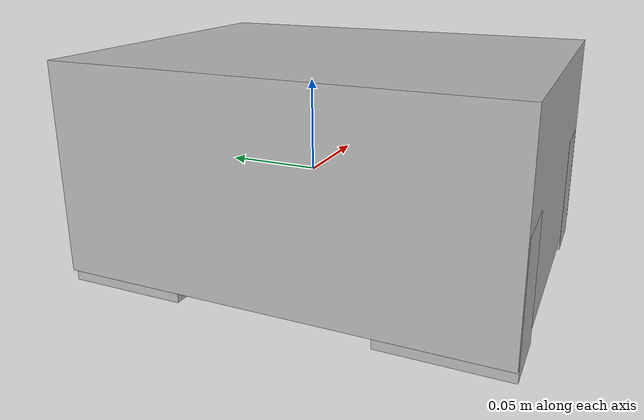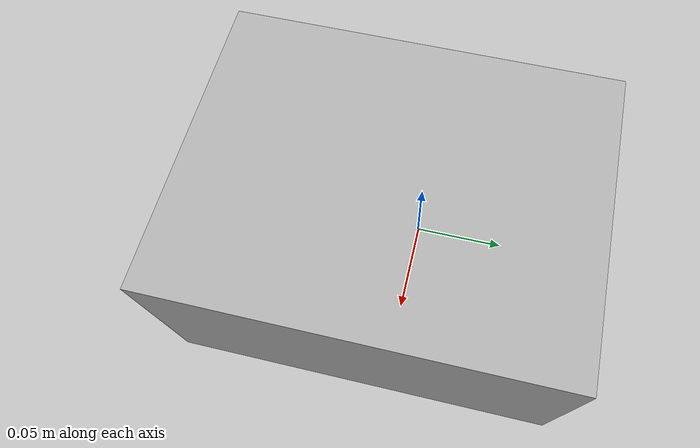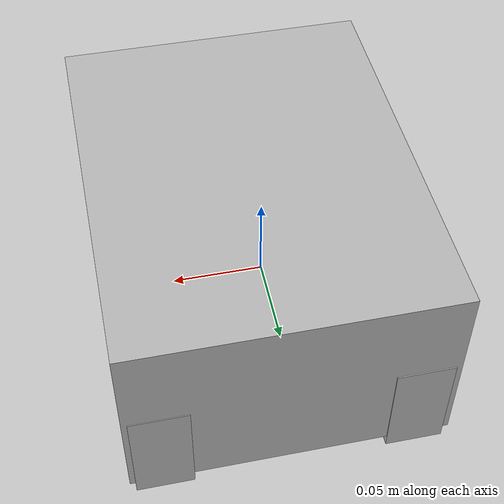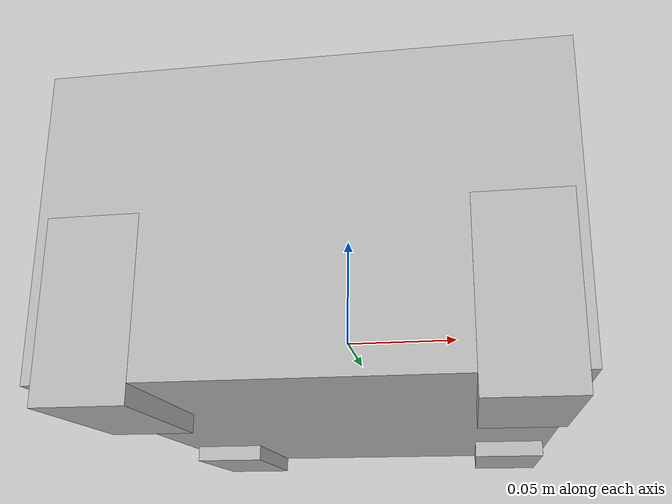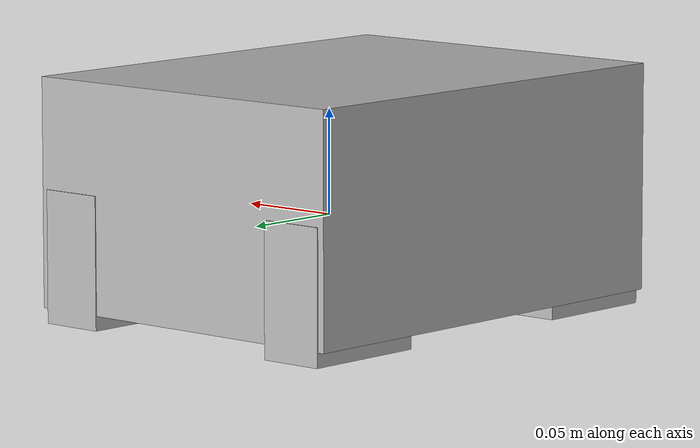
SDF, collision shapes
<?xml version="1.0" ?>
<sdf version="1.6">
  <model name="car_like">
    <static>false</static>
    <pose>0 0 0 0 0 0</pose>
    <link name="base_link">
      <pose>0 0 0 0 0 0</pose>
      <velocity_decay>
        <linear>0.30000001192092896</linear>
        <angular>0.6000000238418579</angular>
      </velocity_decay>
      <visual name="base_link_visual">
        <pose>0 0 0 0 0 0</pose>
        <geometry>
          <mesh>
            <uri>file:///home/ttrindader/Downloads/LucasPInheiro/tosdfnew/meshes/base_link.dae</uri>
          </mesh>
        </geometry>
        <cast_shadows>true</cast_shadows>
      </visual>
      <collision name="base_link_col">
        <pose>0.0034895427525043488 -0.015733987092971802 0.012140290811657906 0 0 0</pose>
        <geometry>
          <box>
            <size>0.17562101036310196 0.22589102387428284 0.10857900604605675</size>
          </box>
        </geometry>
        <surface>
          <friction>
            <ode>
              <mu>5.0</mu>
              <mu2>5.0</mu2>
              <slip1>0.0</slip1>
              <slip2>0.0</slip2>
            </ode>
            <torsional>
              <coefficient>1.0</coefficient>
              <use_patch_radius>true</use_patch_radius>
              <patch_radius>0.019999999552965164</patch_radius>
              <ode>
                <slip>0.0</slip>
              </ode>
            </torsional>
          </friction>
          <contact>
            <ode>
              <kp>1000000.0</kp>
              <kd>50.0</kd>
              <max_vel>0.2</max_vel>
              <min_depth>0.001</min_depth>
            </ode>
          </contact>
          <bounce>
            <restitution_coefficient>0.0</restitution_coefficient>
            <threshold>1e6</threshold>
          </bounce>
        </surface>
      </collision>
      <inertial>
        <pose>0.0034895427525043488 -0.015733987092971802 0.012140290811657906 0 0 0</pose>
        <mass>0.387671448</mass>
        <inertia>
          <ixx>0.002029336</ixx>
          <ixy>0</ixy>
          <ixz>0</ixz>
          <iyy>0.001377272</iyy>
          <iyz>0</iyz>
          <izz>0.002644872</izz>
        </inertia>
      </inertial>
    </link>
    <link name="wheel2">
      <pose>-0.06593014299869537 0.06624943763017654 -0.017635000869631767 0.0 -0.0 0.0</pose>
      <visual name="wheel2_visual">
        <pose>0 0 0 0 0 0</pose>
        <geometry>
          <mesh>
            <uri>file:///home/ttrindader/Downloads/LucasPInheiro/tosdfnew/meshes/wheel2.dae</uri>
          </mesh>
        </geometry>
        <cast_shadows>true</cast_shadows>
      </visual>
      <collision name="wheel2_col">
        <pose>0.000691086232875171 0.00010715294393226493 -6.675720531923446e-09 0 0 0</pose>
        <geometry>
          <box>
            <size>0.03165030322070206 0.06300000299233943 0.06300000489968816</size>
          </box>
        </geometry>
        <surface>
          <friction>
            <ode>
              <mu>5.0</mu>
              <mu2>5.0</mu2>
              <slip1>0.0</slip1>
              <slip2>0.0</slip2>
            </ode>
            <torsional>
              <coefficient>1.0</coefficient>
              <use_patch_radius>true</use_patch_radius>
              <patch_radius>0.019999999552965164</patch_radius>
              <ode>
                <slip>0.0</slip>
              </ode>
            </torsional>
          </friction>
          <contact>
            <ode>
              <kp>1000000.0</kp>
              <kd>50.0</kd>
              <max_vel>0.2</max_vel>
              <min_depth>0.001</min_depth>
            </ode>
          </contact>
          <bounce>
            <restitution_coefficient>0.0</restitution_coefficient>
            <threshold>1e6</threshold>
          </bounce>
        </surface>
      </collision>
      <inertial>
        <pose>0.000691086232875171 0.00010715294393226493 -6.675720531923446e-09 0 0 0</pose>
        <mass>0.011305806</mass>
        <inertia>
          <ixx>0.000007479</ixx>
          <ixy>0</ixy>
          <ixz>0</ixz>
          <iyy>0.000004683</iyy>
          <iyz>0</iyz>
          <izz>0.000004683</izz>
        </inertia>
      </inertial>
    </link>
    <link name="wheel3">
      <pose>-0.06593000143766403 -0.09720829874277115 -0.017635000869631767 0.0 -0.0 0.0</pose>
      <visual name="wheel3_visual">
        <pose>0 0 0 0 0 0</pose>
        <geometry>
          <mesh>
            <uri>file:///home/ttrindader/Downloads/LucasPInheiro/tosdfnew/meshes/wheel3.dae</uri>
          </mesh>
        </geometry>
        <cast_shadows>true</cast_shadows>
      </visual>
      <collision name="wheel3_col">
        <pose>0.0006482181102334117 0.0 -2.861022752043141e-09 0 0 0</pose>
        <geometry>
          <box>
            <size>0.03150000164378408 0.06300000299233943 0.06300000138021966</size>
          </box>
        </geometry>
        <surface>
          <friction>
            <ode>
              <mu>5.0</mu>
              <mu2>5.0</mu2>
              <slip1>0.0</slip1>
              <slip2>0.0</slip2>
            </ode>
            <torsional>
              <coefficient>1.0</coefficient>
              <use_patch_radius>true</use_patch_radius>
              <patch_radius>0.019999999552965164</patch_radius>
              <ode>
                <slip>0.0</slip>
              </ode>
            </torsional>
          </friction>
          <contact>
            <ode>
              <kp>1000000.0</kp>
              <kd>50.0</kd>
              <max_vel>0.2</max_vel>
              <min_depth>0.001</min_depth>
            </ode>
          </contact>
          <bounce>
            <restitution_coefficient>0.0</restitution_coefficient>
            <threshold>1e6</threshold>
          </bounce>
        </surface>
      </collision>
      <inertial>
        <pose>0.0006482181102334117 0.0 -2.861022752043141e-09 0 0 0</pose>
        <mass>0.011252116</mass>
        <inertia>
          <ixx>0.000007443</ixx>
          <ixy>0</ixy>
          <ixz>0</ixz>
          <iyy>0.000004652</iyy>
          <iyz>0</iyz>
          <izz>0.000004652</izz>
        </inertia>
      </inertial>
    </link>
    <link name="wheel4">
      <pose>0.07317300140857697 -0.09728100150823593 -0.017635000869631767 0.0 -0.0 0.0</pose>
      <visual name="wheel4_visual">
        <pose>0 0 0 0 0 0</pose>
        <geometry>
          <mesh>
            <uri>file:///home/ttrindader/Downloads/LucasPInheiro/tosdfnew/meshes/wheel4.dae</uri>
          </mesh>
        </geometry>
        <cast_shadows>true</cast_shadows>
      </visual>
      <collision name="wheel4_col">
        <pose>-0.0006496691040328018 0.0 2.893265960146607e-09 0 0 0</pose>
        <geometry>
          <box>
            <size>0.03157100099515142 0.06300000299233943 0.06370999612480444</size>
          </box>
        </geometry>
        <surface>
          <friction>
            <ode>
              <mu>5.0</mu>
              <mu2>5.0</mu2>
              <slip1>0.0</slip1>
              <slip2>0.0</slip2>
            </ode>
            <torsional>
              <coefficient>1.0</coefficient>
              <use_patch_radius>true</use_patch_radius>
              <patch_radius>0.019999999552965164</patch_radius>
              <ode>
                <slip>0.0</slip>
              </ode>
            </torsional>
          </friction>
          <contact>
            <ode>
              <kp>1000000.0</kp>
              <kd>50.0</kd>
              <max_vel>0.2</max_vel>
              <min_depth>0.001</min_depth>
            </ode>
          </contact>
          <bounce>
            <restitution_coefficient>0.0</restitution_coefficient>
            <threshold>1e6</threshold>
          </bounce>
        </surface>
      </collision>
      <inertial>
        <pose>-0.0006496691040328018 0.0 2.893265960146607e-09 0 0 0</pose>
        <mass>0.011404572</mass>
        <inertia>
          <ixx>0.000007630</ixx>
          <ixy>0</ixy>
          <ixz>0</ixz>
          <iyy>0.000004805</iyy>
          <iyz>0</iyz>
          <izz>0.000004719</izz>
        </inertia>
      </inertial>
    </link>
    <link name="wheel1">
      <pose>0.07317258417606354 0.06612101197242737 -0.01763458363711834 0.0 -0.0 0.0</pose>
      <visual name="wheel1_visual">
        <pose>0 0 0 0 0 0</pose>
        <geometry>
          <mesh>
            <uri>file:///home/ttrindader/Downloads/LucasPInheiro/tosdfnew/meshes/wheel1.dae</uri>
          </mesh>
        </geometry>
        <cast_shadows>true</cast_shadows>
      </visual>
      <collision name="wheel1_col">
        <pose>-0.0006482080966537795 0.00010726738485566933 2.8610230851100482e-09 0 0 0</pose>
        <geometry>
          <box>
            <size>0.03150000259745833 0.06300000299233943 0.06300000489968816</size>
          </box>
        </geometry>
        <surface>
          <friction>
            <ode>
              <mu>5.0</mu>
              <mu2>5.0</mu2>
              <slip1>0.0</slip1>
              <slip2>0.0</slip2>
            </ode>
            <torsional>
              <coefficient>1.0</coefficient>
              <use_patch_radius>true</use_patch_radius>
              <patch_radius>0.019999999552965164</patch_radius>
              <ode>
                <slip>0.0</slip>
              </ode>
            </torsional>
          </friction>
          <contact>
            <ode>
              <kp>1000000.0</kp>
              <kd>50.0</kd>
              <max_vel>0.2</max_vel>
              <min_depth>0.001</min_depth>
            </ode>
          </contact>
          <bounce>
            <restitution_coefficient>0.0</restitution_coefficient>
            <threshold>1e6</threshold>
          </bounce>
        </surface>
      </collision>
      <inertial>
        <pose>-0.0006482080966537795 0.00010726738485566933 2.8610230851100482e-09 0 0 0</pose>
        <mass>0.011252117</mass>
        <inertia>
          <ixx>0.000007443</ixx>
          <ixy>0</ixy>
          <ixz>0</ixz>
          <iyy>0.000004652</iyy>
          <iyz>0</iyz>
          <izz>0.000004652</izz>
        </inertia>
      </inertial>
    </link>
    <joint name="wheel2_joint" type="revolute">
      <parent>base_link</parent>
      <child>wheel2</child>
      <axis>
        <xyz>0 0 1</xyz>
        <limit>
          <lower>-1e16</lower>
          <upper>1e16</upper>
        </limit>
        <dynamics>
          <damping>0.02</damping>
          <friction>0.0</friction>
        </dynamics>
      </axis>
    </joint>
    <joint name="wheel3_joint" type="revolute">
      <parent>base_link</parent>
      <child>wheel3</child>
      <axis>
        <xyz>0 1 0</xyz>
        <limit>
          <lower>-1e16</lower>
          <upper>1e16</upper>
        </limit>
        <dynamics>
          <damping>0.02</damping>
          <friction>0.0</friction>
        </dynamics>
      </axis>
    </joint>
    <joint name="wheel4_joint" type="revolute">
      <parent>base_link</parent>
      <child>wheel4</child>
      <axis>
        <xyz>0 0 1</xyz>
        <limit>
          <lower>-1e16</lower>
          <upper>1e16</upper>
        </limit>
        <dynamics>
          <damping>0.02</damping>
          <friction>0.0</friction>
        </dynamics>
      </axis>
    </joint>
    <joint name="wheel1_joint" type="revolute">
      <parent>base_link</parent>
      <child>wheel1</child>
      <axis>
        <xyz>0 0 1</xyz>
        <limit>
          <lower>-1e16</lower>
          <upper>1e16</upper>
        </limit>
        <dynamics>
          <damping>0.02</damping>
          <friction>0.0</friction>
        </dynamics>
      </axis>
    </joint>
  </model>
</sdf>
